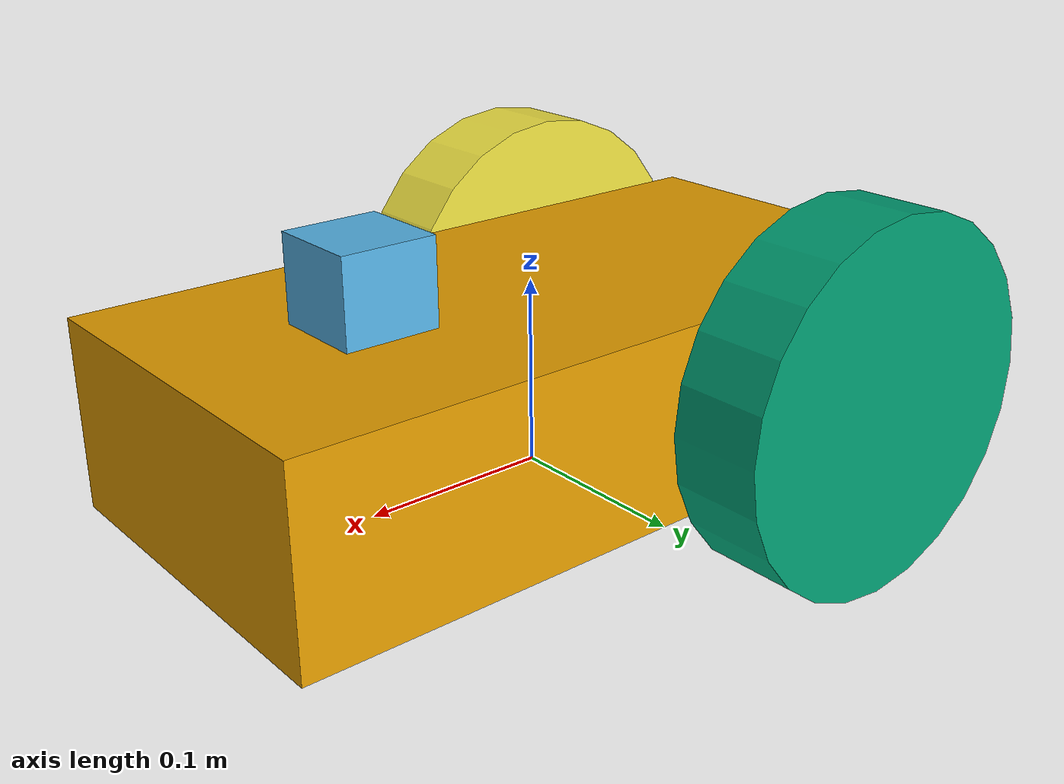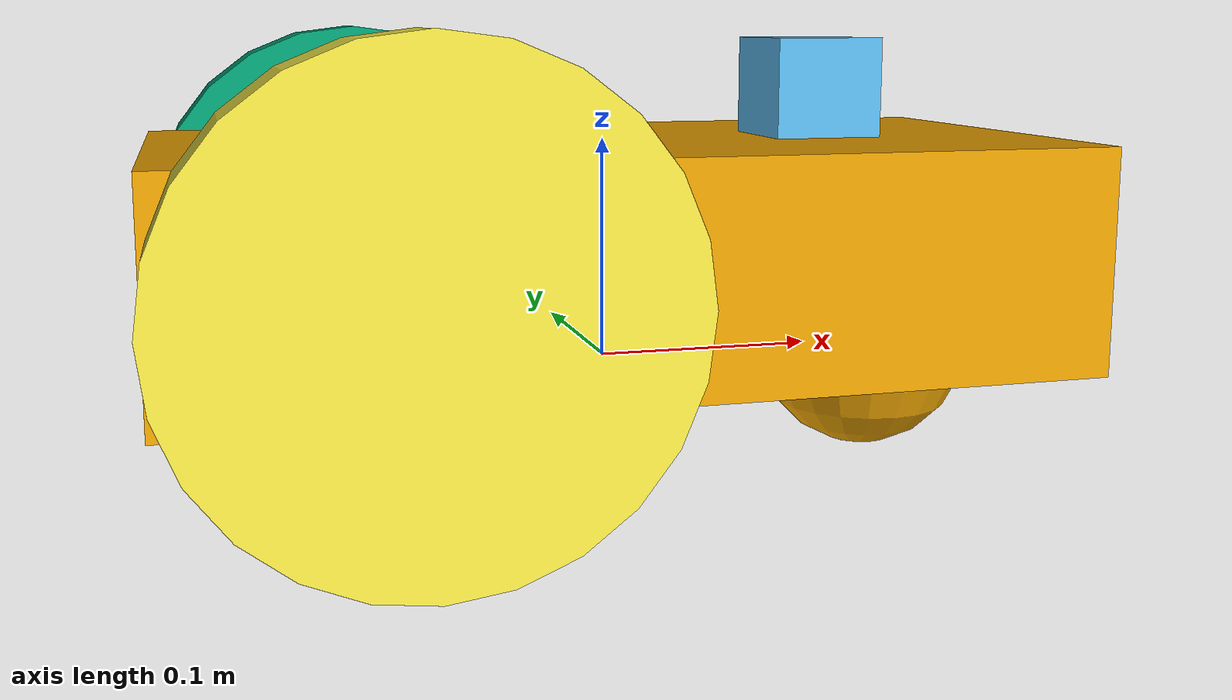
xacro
<?xml version = "1.0"?>
<robot name = "my_diff_drive_robot" xmlns:xacro="http://ros.org/wiki/xacro">

    <xacro:include filename="$(find turtlesim_game)/urdf/robot_essential.xacro" />
    <xacro:include filename="$(find turtlesim_game)/urdf/gazebo_essentials.xacro" />

    <link name = "robot_chassis">

        <visual>
            <origin
            xyz="0 0 .05"
            rpy="0 0 0" />
            <geometry>
                <box size = "0.4 0.2 0.1" />
            </geometry>
        </visual>
        <collision>
            <origin
            xyz="0 0 .05"
            rpy="0 0 0" />
            <geometry>
                <box size = "0.4 0.2 0.1" />
            </geometry>
        </collision>
        <inertial>
            <mass value = "5" /> <!--the correct inertial values -->
            <origin rpy="0 0 0" xyz="0 0 0.1"/> <!-- inertial origin to be located where box is !-->
            <inertia ixx="0.02083333333" ixy="0" ixz="0" iyy="0.7083333333" iyz="0" izz="0.083333333"/>
        </inertial>

         <visual>
            <origin
            xyz="0.13 0 0"
            rpy="0 0 0"/>
            <geometry>
                <sphere radius="0.05" />
            </geometry>
        </visual>
        <collision>
            <origin
            xyz="0.13 0 0"
            rpy="0 0 0"/>
            <geometry>
                <sphere radius="0.05" />
            </geometry>
            <surface>
                <friction>
                    <ode>
                        <mu>0</mu>
                        <mu2>0</mu2>
                        <slip1>1.0</slip1>
                        <slip2>1.0</slip2>
                    </ode>
               </friction>
            </surface>
        </collision>

    </link>

    <!-- ######################### Laser ################################# -->

    <link name="laser_link">
		<collision>
			<origin xyz="0 0 0" rpy="0 0 0"/>
			<geometry>
				<box size="0.05 0.05 0.05"/>
			</geometry>
		</collision>
		<visual>
			<origin xyz="0 0 0" rpy=" 0 0 0"/>
			<geometry>
				<box size=" 0.05 0.05 0.05"/>
			</geometry>
		</visual>
		<inertial>
			<mass value="1e-5"/>
			<origin xyz="0 0 0" rpy="0 0 0"/>
			<inertia ixx="1e-6" ixy="0" ixz="0" iyy="1e-6" iyz="0" izz="1e-6"/>
		</inertial>
	</link>

	<joint name="laser_joint" type="fixed">
		<axis xyz="0 1 0" />
		<origin xyz="0.1 0 0.12" rpy="0 0 0"/>
		<parent link="robot_chassis"/>
		<child link="laser_link"/>
	</joint>

    <!-- ######################### Wheels ################################ -->

    <xacro:robot_wheel prefix = "left" />
    <xacro:robot_wheel prefix = "right" />

    <!-- ####################### Wheel Joints ############################  -->

    <xacro:wheel_joint prefix="left" origin="-0.1 0.13 0.05" />
    <xacro:wheel_joint prefix="right" origin="-0.1 -0.13 0.05" />

</robot>

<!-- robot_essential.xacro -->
<robot name = "my_diff_drive_robot_essentials" xmlns:xacro="fttp://ros.org/wiki/xacro">

    <xacro:macro name = "robot_wheel" params="prefix">
        <link name="${prefix}_robot_wheel">
            <visual>
                <origin
                xyz="0 0 0"
                rpy="1.57 0 0" />
                <geometry>
                    <cylinder length=".05" radius=".1" />
                </geometry>
            </visual>
            <collision>
                <origin
                xyz="0 0 0"
                rpy="1.57 0 0" />
                <geometry>
                    <cylinder length=".05" radius=".1" />
                </geometry>
            </collision>
            <inertial>
                <mass value = "0.2" />
                <origin xyz="0 0 0" rpy ="1.57 0 0" />
                <inertia ixx="0.0005416666667" ixy="0" ixz="0" iyy="0.0005416666667" iyz="0" izz="0.001" />
                <!-- fixed inertial value according to values and correct formula -->
            </inertial>
        </link>
    </xacro:macro>

    <xacro:macro name="wheel_joint" params="prefix origin">
        <joint name="${prefix}_wheel_joint" type="continuous">
            <axis xyz="0 1 0" />
            <parent link = "robot_chassis" />
            <child link = "${prefix}_robot_wheel" />
            <origin xyz="${origin}" rpy="0 0 0" />
            <limit effort="10000" velocity="1000"/>
            <joint_properties damping="1.0" friction="1.0"/>
        </joint>
    </xacro:macro>

</robot>
